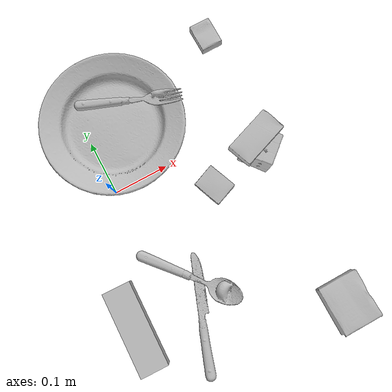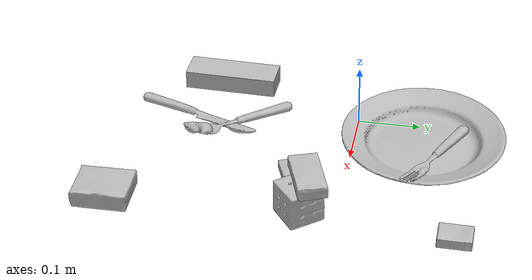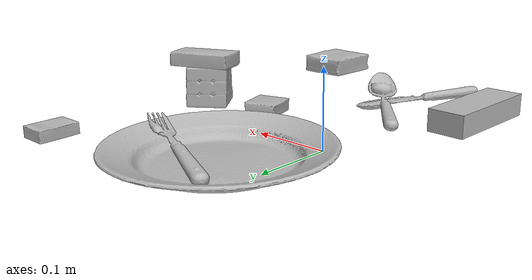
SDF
<sdf version="1.4">
  <world name="default">
    <light name="light1" type="point">
      <pose>0 0 1 0 0 0</pose>
      <diffuse>3 3 3 1</diffuse>
      <specular>3 3 3 1</specular>
    </light>
    <light name="light2" type="point">
      <pose>0 0.5 2 0 0 0</pose>
      <diffuse>1 1 1 1</diffuse>
      <specular>1 1 1 1</specular>
    </light>
    <light name="light3" type="point">
      <pose>0 0.5 2 0 0 0</pose>
      <diffuse>3 3 3 1</diffuse>
      <specular>3 3 3 1</specular>
    </light>
    <scene>
      <ambient>0.7 0.7 0.7</ambient>
    </scene>
    <model name="box11">
      <link name="link_box11">
        <collision name="default">
          <geometry>
            <mesh>
              <uri>model://pudding_box/collision_meshes/collision.obj</uri>
              <scale>0.5 0.5 0.5</scale>
            </mesh>
          </geometry>
          <surface>
            <friction>
              <ode>
                <mu>0.5</mu>
                <mu2>0.5</mu2>
              </ode>
            </friction>
          <contact>
        <ode>
            <max_vel>0</max_vel>
            <min_depth>0.0001</min_depth>
            <kp>1e8</kp>
        </ode>
    </contact></surface>
        </collision>
        <visual name="default">
          <geometry>
            <mesh>
              <uri>model://pudding_box/visual_meshes/visual.dae</uri>
              <scale>0.5 0.5 0.5</scale>
            </mesh>
          </geometry>
        </visual>
        <inertial>
          <mass>0.03786866366863251</mass>
          <pose>0.00024474109522998333 0.00040339428232982755 -0.0002594413817860186 0.005213102272185547 -0.006603797326323335 0.020079825161634604</pose>
          <inertia>
            <ixx>1.0702144e-05</ixx>
            <iyy>7.2004777e-06</iyy>
            <izz>1.580451e-05</izz>
            <ixy>0</ixy>
            <ixz>0</ixz>
            <iyz>0</iyz>
          </inertia>
        </inertial>
      </link>
      <pose>0.15931272506713867 -0.07231392711400986 0.009862903505563736 0.022348527394801292 -0.011391739563826699 0.37843505442321745</pose>
    </model>
    <model name="box12">
      <link name="link_box12">
        <collision name="default">
          <geometry>
            <mesh>
              <uri>model://gelatin_box/collision_meshes/collision.obj</uri>
              <scale>1.0 1.0 1.0</scale>
            </mesh>
          </geometry>
          <surface>
            <friction>
              <ode>
                <mu>0.5</mu>
                <mu2>0.5</mu2>
              </ode>
            </friction>
          <contact>
        <ode>
            <max_vel>0</max_vel>
            <min_depth>0.0001</min_depth>
            <kp>1e8</kp>
        </ode>
    </contact></surface>
        </collision>
        <visual name="default">
          <geometry>
            <mesh>
              <uri>model://gelatin_box/visual_meshes/visual.dae</uri>
              <scale>1.0 1.0 1.0</scale>
            </mesh>
          </geometry>
        </visual>
        <inertial>
          <mass>0.12588495016098022</mass>
          <pose>0.0004319618456065655 0.00011156871914863586 -0.0003640321083366871 -0.0010503723379331838 -0.004755819617810625 0.016440561335826234</pose>
          <inertia>
            <ixx>8.886451e-05</ixx>
            <iyy>6.3475454e-05</iyy>
            <izz>0.00013527159</izz>
            <ixy>0</ixy>
            <ixz>0</ixz>
            <iyz>0</iyz>
          </inertia>
        </inertial>
      </link>
      <pose>0.2616059184074402 -0.3551810085773468 0.01516831386834383 0.005597410902340446 -0.007304482612739304 0.0001196265377088349</pose>
    </model>
    <model name="box13">
      <link name="link_box13">
        <collision name="default">
          <geometry>
            <mesh>
              <uri>model://rubiks_cube/collision_meshes/collision.obj</uri>
              <scale>1.0 1.0 1.0</scale>
            </mesh>
          </geometry>
          <surface>
            <friction>
              <ode>
                <mu>0.5</mu>
                <mu2>0.5</mu2>
              </ode>
            </friction>
          <contact>
        <ode>
            <max_vel>0</max_vel>
            <min_depth>0.0001</min_depth>
            <kp>1e8</kp>
        </ode>
    </contact></surface>
        </collision>
        <visual name="default">
          <geometry>
            <mesh>
              <uri>model://rubiks_cube/visual_meshes/visual.dae</uri>
              <scale>1.0 1.0 1.0</scale>
            </mesh>
          </geometry>
        </visual>
        <inertial>
          <mass>0.24923686683177948</mass>
          <pose>2.6721039830590598e-05 5.256966323941015e-05 -7.264316082000732e-06 -0.05467307197132049 -0.09814178001312306 -0.03445579173896148</pose>
          <inertia>
            <ixx>0.00013772011</ixx>
            <iyy>0.00013707785</iyy>
            <izz>0.00013886133</izz>
            <ixy>0</ixy>
            <ixz>0</ixz>
            <iyz>0</iyz>
          </inertia>
        </inertial>
      </link>
      <pose>0.2577035129070282 -0.05436212942004204 0.028678789734840393 -2.0864685694547954e-05 -5.145089966018276e-06 2.2715021929115133</pose>
    </model>
    <model name="box21">
      <link name="link_box21">
        <collision name="default">
          <geometry>
            <mesh>
              <uri>model://cracker_box/collision_meshes/collision.obj</uri>
              <scale>0.25 0.25 0.25</scale>
            </mesh>
          </geometry>
          <surface>
            <friction>
              <ode>
                <mu>0.5</mu>
                <mu2>0.5</mu2>
              </ode>
            </friction>
          <contact>
        <ode>
            <max_vel>0</max_vel>
            <min_depth>0.0001</min_depth>
            <kp>1e8</kp>
        </ode>
    </contact></surface>
        </collision>
        <visual name="default">
          <geometry>
            <mesh>
              <uri>model://cracker_box/visual_meshes/visual.dae</uri>
              <scale>0.25 0.25 0.25</scale>
            </mesh>
          </geometry>
        </visual>
        <inertial>
          <mass>0.030397580936551094</mass>
          <pose>0.00023660376609768718 6.358562677633017e-05 -0.0004257384280208498 -0.0003162076301819785 -0.011106490531717715 0.002546795235004545</pose>
          <inertia>
            <ixx>4.8323677e-06</ixx>
            <iyy>7.979188e-06</iyy>
            <izz>1.1387034e-05</izz>
            <ixy>0</ixy>
            <ixz>0</ixz>
            <iyz>0</iyz>
          </inertia>
        </inertial>
      </link>
      <pose>0.27954617142677307 0.18204805254936218 0.009096028283238411 -0.014050610875912735 -0.005016600351664946 -1.570565384299986</pose>
    </model>
    <model name="box22">
      <link name="link_box22">
        <collision name="default">
          <geometry>
            <mesh>
              <uri>model://jenga/collision_meshes/collision.obj</uri>
              <scale>1.0 1.0 1.0</scale>
            </mesh>
          </geometry>
          <surface>
            <friction>
              <ode>
                <mu>0.5</mu>
                <mu2>0.5</mu2>
              </ode>
            </friction>
          <contact>
        <ode>
            <max_vel>0</max_vel>
            <min_depth>0.0001</min_depth>
            <kp>1e8</kp>
        </ode>
    </contact></surface>
        </collision>
        <visual name="default">
          <geometry>
            <mesh>
              <uri>model://jenga/visual_meshes/visual.dae</uri>
              <scale>1.0 1.0 1.0</scale>
            </mesh>
          </geometry>
        </visual>
        <inertial>
          <mass>0.22754427790641785</mass>
          <pose>-2.502855807051674e-07 -0.00010250010382151231 -4.0923401684267446e-05 0.0 -7.34215461761844e-07 0.0</pose>
          <inertia>
            <ixx>6.2967025e-05</ixx>
            <iyy>0.00042666285</iyy>
            <izz>0.00045549884</izz>
            <ixy>0</ixy>
            <ixz>0</ixz>
            <iyz>0</iyz>
          </inertia>
        </inertial>
      </link>
      <pose>-0.07331546396017075 -0.22335116565227509 0.014999997802078724 1.1718523834717196e-08 4.034565055944585e-10 1.54326165562535</pose>
    </model>
    <model name="box23">
      <link name="link_box23">
        <collision name="default">
          <geometry>
            <mesh>
              <uri>model://sugar_box/collision_meshes/collision.obj</uri>
              <scale>0.5 0.5 0.5</scale>
            </mesh>
          </geometry>
          <surface>
            <friction>
              <ode>
                <mu>0.5</mu>
                <mu2>0.5</mu2>
              </ode>
            </friction>
          <contact>
        <ode>
            <max_vel>0</max_vel>
            <min_depth>0.0001</min_depth>
            <kp>1e8</kp>
        </ode>
    </contact></surface>
        </collision>
        <visual name="default">
          <geometry>
            <mesh>
              <uri>model://sugar_box/visual_meshes/visual.dae</uri>
              <scale>0.5 0.5 0.5</scale>
            </mesh>
          </geometry>
        </visual>
        <inertial>
          <mass>0.07313712686300278</mass>
          <pose>0.0005171863595023751 1.924554817378521e-05 -0.00018182402709499002 -0.0004046264167799433 0.0010506636386831275 0.0026153785560066108</pose>
          <inertia>
            <ixx>1.5234412e-05</ixx>
            <iyy>4.924075e-05</iyy>
            <izz>5.894705e-05</izz>
            <ixy>0</ixy>
            <ixz>0</ixz>
            <iyz>0</iyz>
          </inertia>
        </inertial>
      </link>
      <pose>0.25112420320510864 -0.042029935866594315 0.06889881193637848 -0.0026419933588137457 -0.009967417625767794 -2.7982674271235943</pose>
    </model>
    <model name="plate1">
      <link name="link_plate1">
        <collision name="default">
          <geometry>
            <mesh>
              <uri>model://plate/collision_meshes/collision.obj</uri>
              <scale>1.0 1.0 1.0</scale>
            </mesh>
          </geometry>
          <surface>
            <friction>
              <ode>
                <mu>0.5</mu>
                <mu2>0.5</mu2>
              </ode>
            </friction>
          <contact>
        <ode>
            <max_vel>0</max_vel>
            <min_depth>0.0001</min_depth>
            <kp>1e8</kp>
        </ode>
    </contact></surface>
        </collision>
        <visual name="default">
          <geometry>
            <mesh>
              <uri>model://plate/visual_meshes/visual.dae</uri>
              <scale>1.0 1.0 1.0</scale>
            </mesh>
          </geometry>
        </visual>
        <inertial>
          <mass>0.2069685012102127</mass>
          <pose>-0.0006044612964615226 0.0002782598603516817 -0.0010561986127868295 0.0022188143427174073 -0.003225461822968263 0.4526007532235607</pose>
          <inertia>
            <ixx>0.0009682027</ixx>
            <iyy>0.0009589421</iyy>
            <izz>0.0018936595</izz>
            <ixy>0</ixy>
            <ixz>0</ixz>
            <iyz>0</iyz>
          </inertia>
        </inertial>
      </link>
      <pose>0.05225100368261337 0.11042863875627518 0.013733003288507462 9.196262862397385e-09 -2.9089794581928756e-08 2.575002606998544</pose>
    </model>
    <model name="silverware1">
      <link name="link_silverware1">
        <collision name="default">
          <geometry>
            <mesh>
              <uri>model://knife/collision_meshes/collision.obj</uri>
              <scale>1.0 1.0 1.0</scale>
            </mesh>
          </geometry>
          <surface>
            <friction>
              <ode>
                <mu>0.5</mu>
                <mu2>0.5</mu2>
              </ode>
            </friction>
          <contact>
        <ode>
            <max_vel>0</max_vel>
            <min_depth>0.0001</min_depth>
            <kp>1e8</kp>
        </ode>
    </contact></surface>
        </collision>
        <visual name="default">
          <geometry>
            <mesh>
              <uri>model://knife/visual_meshes/visual.dae</uri>
              <scale>1.0 1.0 1.0</scale>
            </mesh>
          </geometry>
        </visual>
        <inertial>
          <mass>0.01404397189617157</mass>
          <pose>-0.02378525771200657 0.0015275126788765192 5.0620223191799596e-05 0.07306830572090188 0.017248424252748085 -0.00740981553779352</pose>
          <inertia>
            <ixx>3.9862488e-07</ixx>
            <iyy>5.3954667e-05</iyy>
            <izz>5.408303e-05</izz>
            <ixy>0</ixy>
            <ixz>0</ixz>
            <iyz>0</iyz>
          </inertia>
        </inertial>
      </link>
      <pose>0.03554600849747658 -0.2591124475002289 0.008027390576899052 -0.07548080563312268 -0.013477657374027114 1.214050993935253</pose>
    </model>
    <model name="silverware2">
      <link name="link_silverware2">
        <collision name="default">
          <geometry>
            <mesh>
              <uri>model://fork/collision_meshes/collision.obj</uri>
              <scale>1.0 1.0 1.0</scale>
            </mesh>
          </geometry>
          <surface>
            <friction>
              <ode>
                <mu>0.5</mu>
                <mu2>0.5</mu2>
              </ode>
            </friction>
          <contact>
        <ode>
            <max_vel>0</max_vel>
            <min_depth>0.0001</min_depth>
            <kp>1e8</kp>
        </ode>
    </contact></surface>
        </collision>
        <visual name="default">
          <geometry>
            <mesh>
              <uri>model://fork/visual_meshes/visual.dae</uri>
              <scale>1.0 1.0 1.0</scale>
            </mesh>
          </geometry>
        </visual>
        <inertial>
          <mass>0.012992284260690212</mass>
          <pose>-0.029570037499070168 0.0004658822435885668 0.00032188609475269914 -0.013552170713958372 -0.010977837352032947 0.014453895109592321</pose>
          <inertia>
            <ixx>4.5545306e-07</ixx>
            <iyy>3.3919117e-05</iyy>
            <izz>3.4122822e-05</izz>
            <ixy>0</ixy>
            <ixz>0</ixz>
            <iyz>0</iyz>
          </inertia>
        </inertial>
      </link>
      <pose>0.09567355364561081 0.1349940299987793 0.018067872151732445 0.17374702863957844 -0.06347240041089405 -0.4106346487813289</pose>
    </model>
    <model name="silverware3">
      <link name="link_silverware3">
        <collision name="default">
          <geometry>
            <mesh>
              <uri>model://spoon/collision_meshes/collision.obj</uri>
              <scale>1.0 1.0 1.0</scale>
            </mesh>
          </geometry>
          <surface>
            <friction>
              <ode>
                <mu>0.5</mu>
                <mu2>0.5</mu2>
              </ode>
            </friction>
          <contact>
        <ode>
            <max_vel>0</max_vel>
            <min_depth>0.0001</min_depth>
            <kp>1e8</kp>
        </ode>
    </contact></surface>
        </collision>
        <visual name="default">
          <geometry>
            <mesh>
              <uri>model://spoon/visual_meshes/visual.dae</uri>
              <scale>1.0 1.0 1.0</scale>
            </mesh>
          </geometry>
        </visual>
        <inertial>
          <mass>0.01562128309160471</mass>
          <pose>-0.0055263228714466095 -0.0016034174477681518 -0.0007271653157658875 0.03521671072610287 -0.03906584128735088 0.006150609582760137</pose>
          <inertia>
            <ixx>8.688809e-07</ixx>
            <iyy>5.9438455e-05</iyy>
            <izz>5.986695e-05</izz>
            <ixy>0</ixy>
            <ixz>0</ixz>
            <iyz>0</iyz>
          </inertia>
        </inertial>
      </link>
      <pose>0.04721429571509361 -0.18910707533359528 0.013538366183638573 0.03412061380589744 -0.044620370976709234 -0.8880800638158828</pose>
    </model>
  <physics type="ode">
      <max_contacts>50</max_contacts>
      <ode>
        <solver>
          <type>quick</type>
          <iters>75</iters>
        </solver>
        <constraints>
          <contact_max_correcting_vel>0</contact_max_correcting_vel>
          <contact_surface_layer>0</contact_surface_layer>
        </constraints>
      </ode>
    </physics></world>
</sdf>
